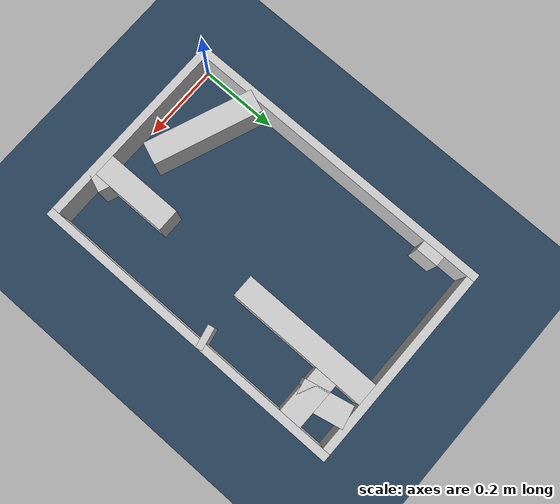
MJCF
<?xml version="1.0" ?>
<mujoco model="generated_real_template">
  <compiler angle="degree"/>
  <option timestep="0.002" integrator="implicitfast" iterations="100" cone="elliptic"/>
  <default>
    <geom density="1"/>
  </default>
  <asset>
    <texture builtin="gradient" height="3072" rgb1="0.3 0.5 0.7" rgb2="0 0 0" type="skybox" width="512"/>
    <texture builtin="checker" height="300" mark="edge" markrgb="0.8 0.8 0.8" name="groundplane" rgb1="0.2 0.3 0.4" rgb2="0.1 0.2 0.3" type="2d" width="300"/>
    <material name="groundplane" reflectance="0.2" texrepeat="5 5" texture="groundplane" texuniform="true"/>
  </asset>
  <worldbody>
    <light dir="0 0 -1" directional="true" pos="0 0 1.5"/>
    <geom name="floor" type="plane" condim="4" friction="0.5 0.005 0.001" material="groundplane" size="0 0 0.05"/>
    <body name="walls">
      <geom name="wall_boundary_left" type="box" condim="4" friction="1.0 0.005 0.0001" rgba="0.8 0.8 0.8 1" pos="-0.010000 0.387500 0.050000" euler="0 0 0.000000" size="0.010000 0.407500 0.050000"/>
      <geom name="wall_boundary_right" type="box" condim="4" friction="1.0 0.005 0.0001" rgba="0.8 0.8 0.8 1" pos="0.500000 0.387500 0.050000" euler="0 0 0.000000" size="0.010000 0.407500 0.050000"/>
      <geom name="wall_boundary_bottom" type="box" condim="4" friction="1.0 0.005 0.0001" rgba="0.8 0.8 0.8 1" pos="0.245000 -0.010000 0.050000" euler="0 0 0.000000" size="0.245000 0.010000 0.050000"/>
      <geom name="wall_boundary_top" type="box" condim="4" friction="1.0 0.005 0.0001" rgba="0.8 0.8 0.8 1" pos="0.245000 0.785000 0.050000" euler="0 0 0.000000" size="0.245000 0.010000 0.050000"/>
      <geom name="wall_inner_1_1" type="box" condim="4" friction="1.0 0.005 0.0001" rgba="0.8 0.8 0.8 1" pos="0.371756 0.012389 0.050000" euler="0 0 158.574887" size="0.016036 0.028500 0.050000"/>
      <geom name="wall_inner_1_2" type="box" condim="4" friction="1.0 0.005 0.0001" rgba="0.8 0.8 0.8 1" pos="0.128140 0.107984 0.050000" euler="0 0 158.574887" size="0.137652 0.028500 0.050000"/>
      <geom name="wall_inner_2_1" type="box" condim="4" friction="1.0 0.005 0.0001" rgba="0.8 0.8 0.8 1" pos="0.341565 0.097416 0.050000" euler="0 0 90.000000" size="0.097416 0.028500 0.050000"/>
      <geom name="wall_inner_2_2" type="box" condim="4" friction="1.0 0.005 0.0001" rgba="0.8 0.8 0.8 1" pos="0.341565 0.595306 0.050000" euler="0 0 90.000000" size="0.179694 0.028500 0.050000"/>
      <geom name="wall_inner_3_1" type="box" condim="4" friction="1.0 0.005 0.0001" rgba="0.8 0.8 0.8 1" pos="0.013139 0.682520 0.050000" euler="0 0 0.000000" size="0.013139 0.028500 0.050000"/>
      <geom name="wall_inner_3_2" type="box" condim="4" friction="1.0 0.005 0.0001" rgba="0.8 0.8 0.8 1" pos="0.411417 0.682520 0.050000" euler="0 0 0.000000" size="0.078583 0.028500 0.050000"/>
      <geom name="wall_inner_4_1" type="box" condim="4" friction="1.0 0.005 0.0001" rgba="0.8 0.8 0.8 1" pos="0.480376 0.429813 0.050000" euler="0 0 102.294927" size="0.008345 0.028500 0.050000"/>
      <geom name="wall_inner_4_2" type="box" condim="4" friction="1.0 0.005 0.0001" rgba="0.8 0.8 0.8 1" pos="0.418075 0.715673 0.050000" euler="0 0 102.294927" size="0.060720 0.028500 0.050000"/>
    </body>
  </worldbody>
</mujoco>
